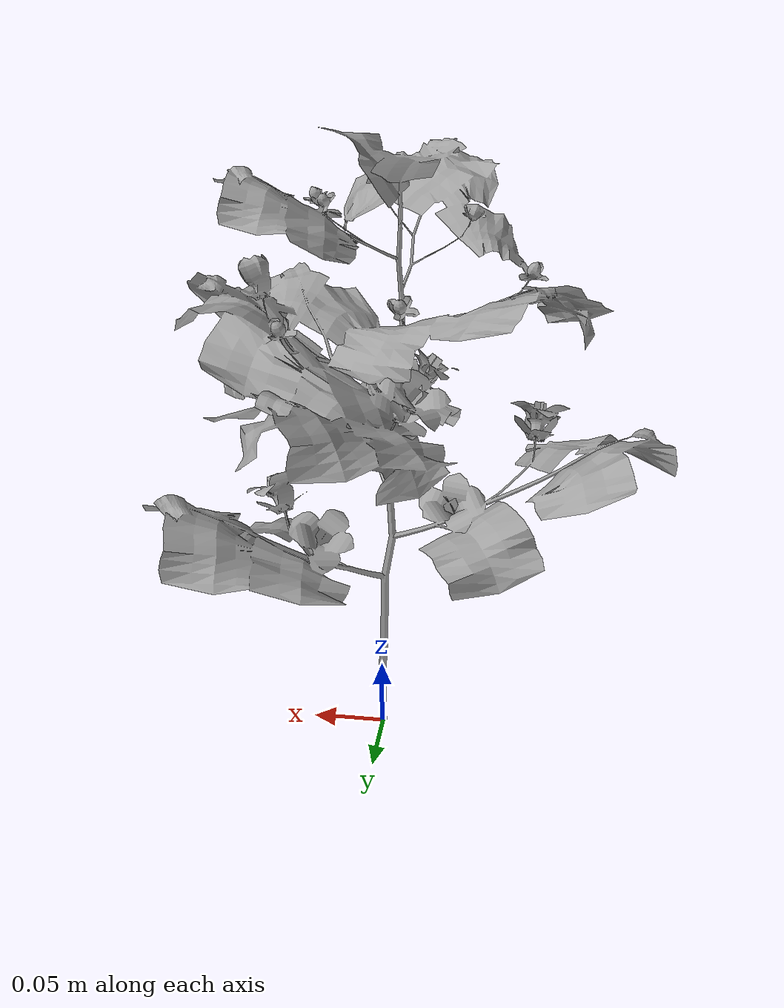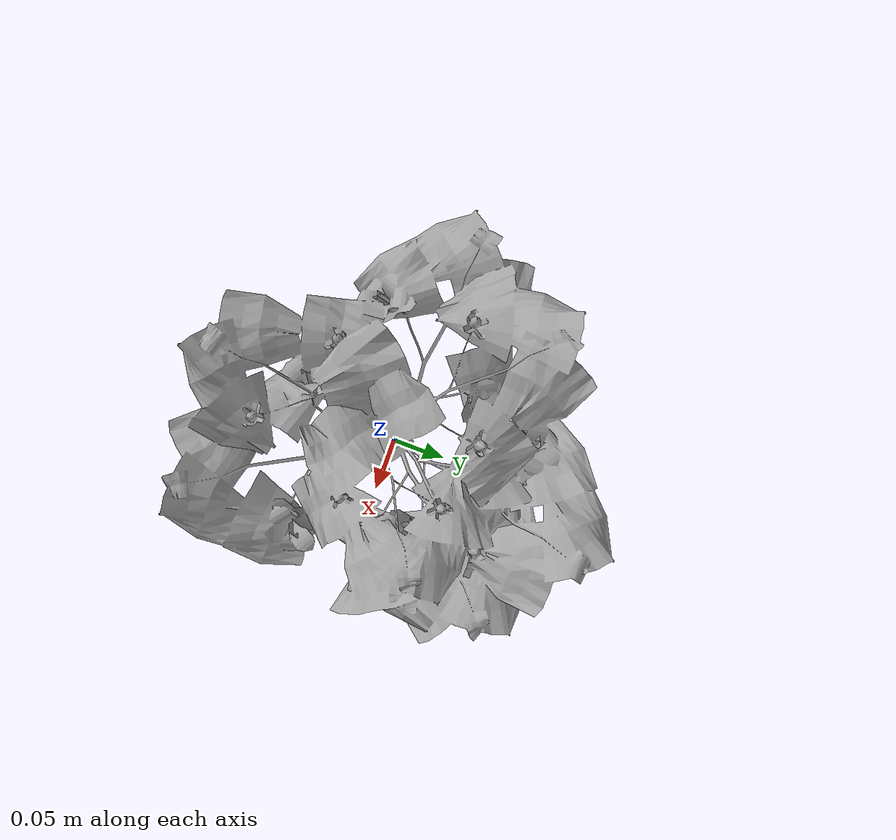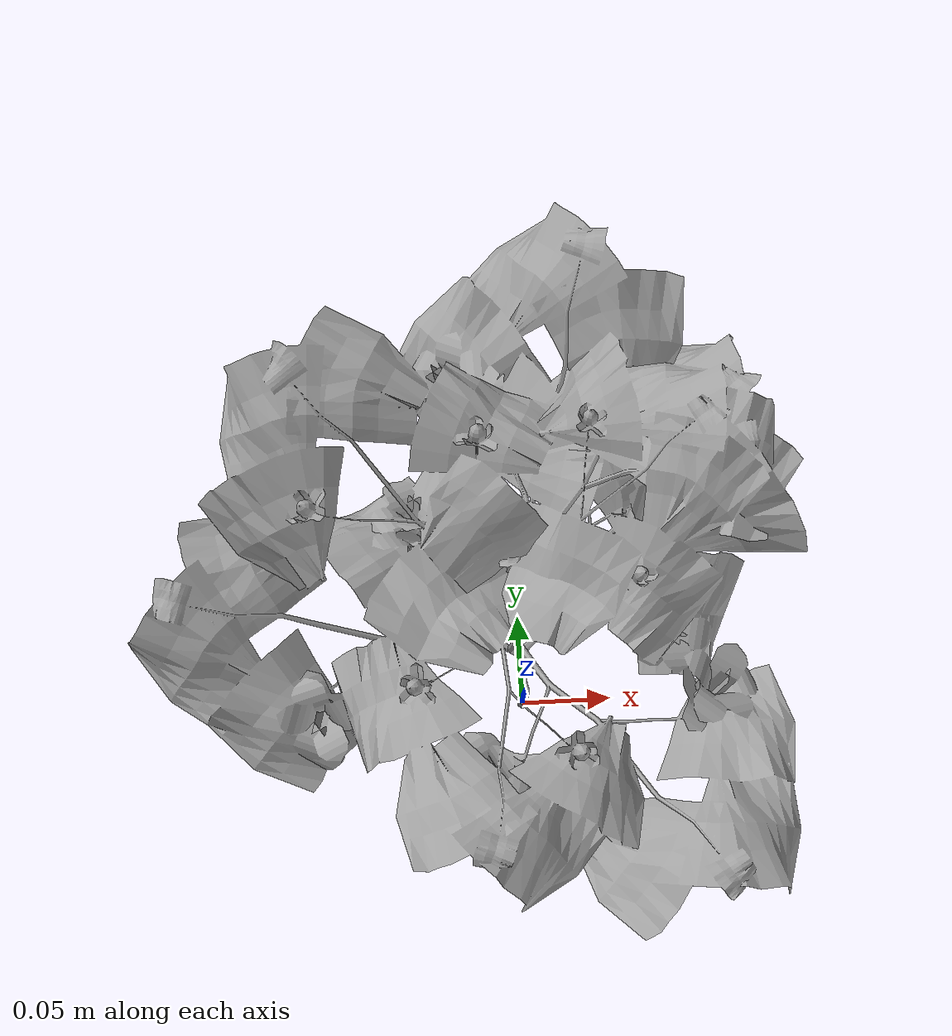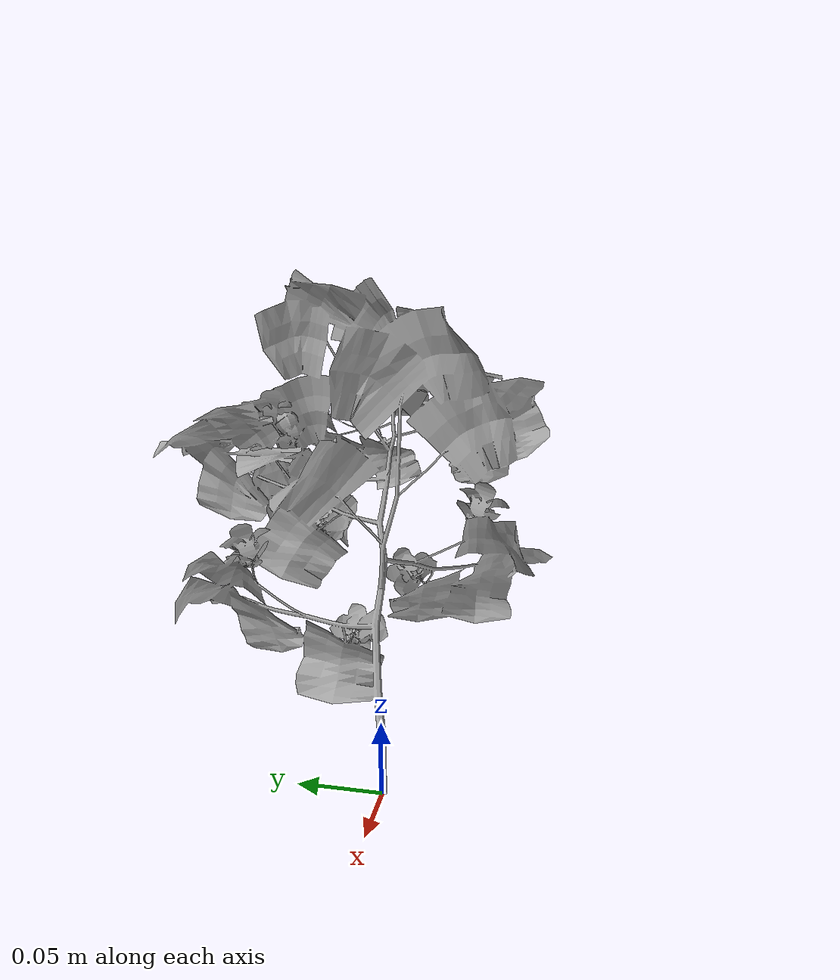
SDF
<?xml version="1.0" ?>
<sdf version="1.5">
	<model name="cotton5">
      <pose>0 0 0  0 0 0</pose>
      <static>true</static>
      <link name="body">
		<collision name="collision">
		    <geometry>
		      <mesh>
		        <uri>model://cotton5/cotton5.dae</uri>
		      </mesh>
		    </geometry>
      	</collision>
        <visual name="visual">
          <geometry>
            <mesh><uri>model://cotton5/cotton5.dae</uri></mesh>
          </geometry>
        </visual>
      </link>
    </model>
</sdf>
